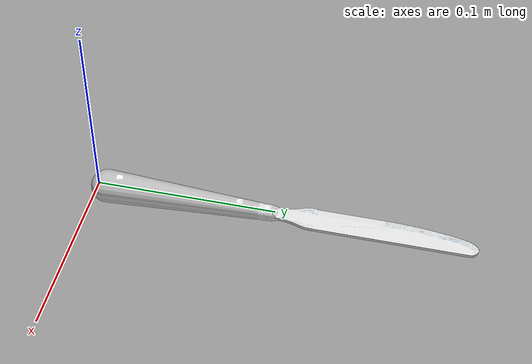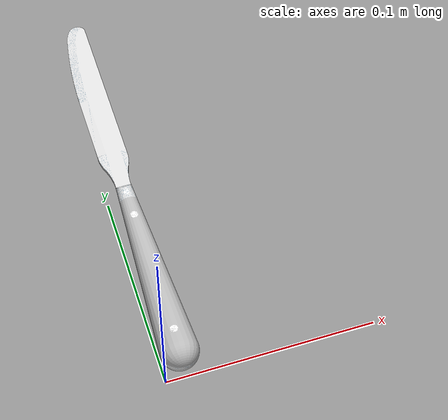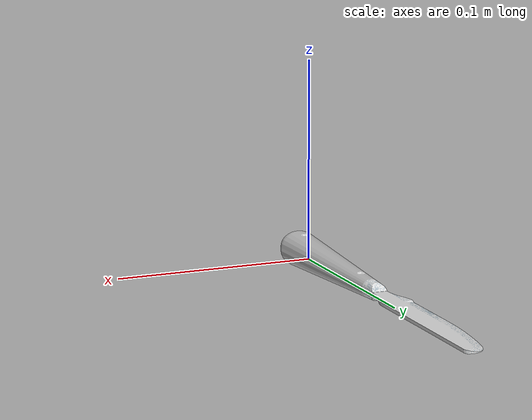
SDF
<?xml version='1.0'?>
<sdf version='1.6'>
  <model name='knife'>
    <link name="body">
      <!-- ========= VISUALS ========= -->
      <visual name="knife">
        <geometry>
          <mesh>
            <uri>model://knife/meshes/model.dae</uri>
            <scale>0.02 0.02 0.02</scale>
          </mesh>
        </geometry>
      </visual>

      <collision name='collision'>
        <density>4000.0</density>
        <laser_retro>0</laser_retro>
        <max_contacts>5</max_contacts>
        <pose frame=''>0 0 0 0 -0 0</pose>
        <geometry>
          <mesh>
            <uri>model://knife/meshes/model.dae</uri>
            <scale>0.02 0.02 0.02</scale>
          </mesh>
        </geometry>

        <surface>
          <contact>
            <ode>
              <!-- Stiff spring‑damper contact so thin plates don’t interpenetrate -->
              <kp>1e7</kp>
              <kd>1.0</kd>
              <max_vel>0.2</max_vel>
              <min_depth>0.5</min_depth>
            </ode>
          </contact>
          <friction>
            <ode>
              <mu>0.05</mu>
              <mu2>0.05</mu2>
            </ode>
          </friction>
        </surface>

      </collision>
      <!-- ========= INERTIA ========= -->
      <inertial>
        <!-- 设定质量 -->
        <mass>0.05</mass>

        <!-- 把重心移动到刀具中间-->
        <pose>0 0.1 0 0 0 0</pose>

        <!-- 简化惯性矩阵（实际值可通过 meshlab、blender 获取） -->
        <inertia
          ixx="0.0001" ixy="0.0"  ixz="0.0"
          iyy="0.0001" iyz="0.0"
          izz="0.0001"/>
      </inertial>
    </link>

    <static>0</static>
    <allow_auto_disable>1</allow_auto_disable>
  </model>
</sdf>
